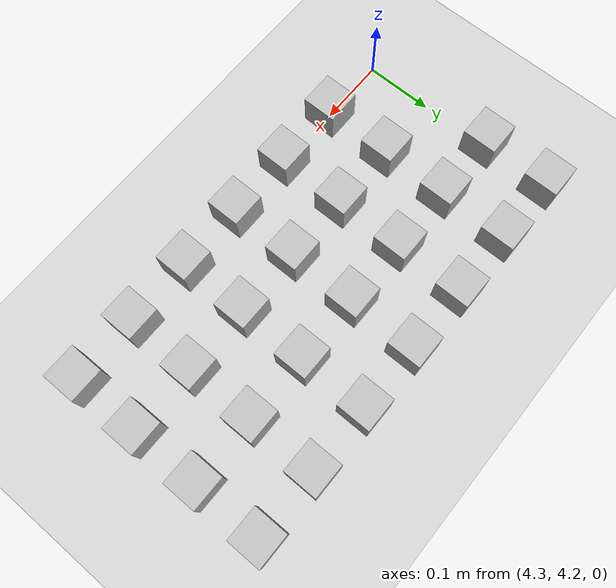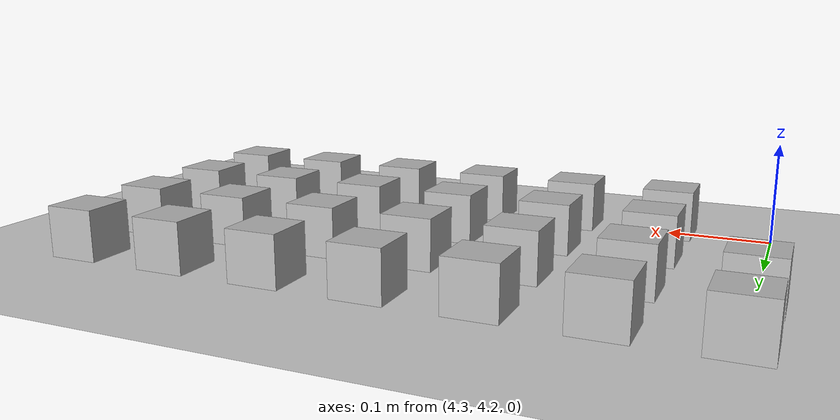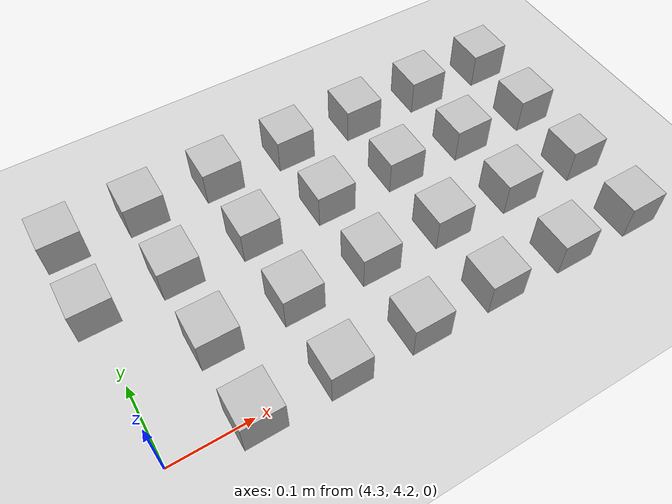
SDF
<sdf version="1.6">
 <world name="default">
  <model name="ground_plane">
   <static>1</static>
   <link name="link">
    <collision name="collision">
     <geometry><plane><normal>0 0 1</normal><size>100 100</size></plane></geometry>
     <surface><friction><ode><mu>100</mu><mu2>50</mu2></ode></friction></surface>
    </collision>
    <visual name="visual">
     <cast_shadows>0</cast_shadows>
     <geometry><plane><normal>0 0 1</normal><size>100 100</size></plane></geometry>
     <material>
      <script><uri>file://media/materials/scripts/gazebo.material</uri><name>Gazebo/Grey</name></script>
     </material>
    </visual>
   </link>
  </model>
  <model name="at194">
   <static>0</static>
   <link name="link">
    <inertial>
     <mass>0.01</mass>
     <inertia><ixx>4e-05</ixx><ixy>0</ixy><ixz>0</ixz><iyy>4e-05</iyy><iyz>0</iyz><izz>4e-05</izz></inertia>
    </inertial>
    <visual name="visual">
     <geometry><box><size>0.05 0.05 0.05</size></box></geometry>
     <material>
      <script>
       <uri>model://at0/materials/scripts</uri>
       <uri>model://at0/materials/textures</uri>
       <name>at0/Diffuse</name>
      </script>
     </material>
    </visual>
    <collision name="collision">
     <geometry><box><size>0.05 0.05 0.05</size></box></geometry>
     <surface><friction><ode><mu>0.8</mu><mu2>0.7</mu2></ode></friction></surface>
    </collision>
   </link>
   <pose>4.4 4.2 0.025 0 -0 0</pose>
  </model>
  <model name="at195">
   <static>0</static>
   <link name="link">
    <inertial>
     <mass>0.01</mass>
     <inertia><ixx>4e-05</ixx><ixy>0</ixy><ixz>0</ixz><iyy>4e-05</iyy><iyz>0</iyz><izz>4e-05</izz></inertia>
    </inertial>
    <visual name="visual">
     <geometry><box><size>0.05 0.05 0.05</size></box></geometry>
     <material>
      <script>
       <uri>model://at0/materials/scripts</uri>
       <uri>model://at0/materials/textures</uri>
       <name>at0/Diffuse</name>
      </script>
     </material>
    </visual>
    <collision name="collision">
     <geometry><box><size>0.05 0.05 0.05</size></box></geometry>
     <surface><friction><ode><mu>0.8</mu><mu2>0.7</mu2></ode></friction></surface>
    </collision>
   </link>
   <pose>4.5 4.2 0.025 0 -0 0</pose>
  </model>
  <model name="at196">
   <static>0</static>
   <link name="link">
    <inertial>
     <mass>0.01</mass>
     <inertia><ixx>4e-05</ixx><ixy>0</ixy><ixz>0</ixz><iyy>4e-05</iyy><iyz>0</iyz><izz>4e-05</izz></inertia>
    </inertial>
    <visual name="visual">
     <geometry><box><size>0.05 0.05 0.05</size></box></geometry>
     <material>
      <script>
       <uri>model://at0/materials/scripts</uri>
       <uri>model://at0/materials/textures</uri>
       <name>at0/Diffuse</name>
      </script>
     </material>
    </visual>
    <collision name="collision">
     <geometry><box><size>0.05 0.05 0.05</size></box></geometry>
     <surface><friction><ode><mu>0.8</mu><mu2>0.7</mu2></ode></friction></surface>
    </collision>
   </link>
   <pose>4.6 4.2 0.025 0 -0 0</pose>
  </model>
  <model name="at197">
   <static>0</static>
   <link name="link">
    <inertial>
     <mass>0.01</mass>
     <inertia><ixx>4e-05</ixx><ixy>0</ixy><ixz>0</ixz><iyy>4e-05</iyy><iyz>0</iyz><izz>4e-05</izz></inertia>
    </inertial>
    <visual name="visual">
     <geometry><box><size>0.05 0.05 0.05</size></box></geometry>
     <material>
      <script>
       <uri>model://at0/materials/scripts</uri>
       <uri>model://at0/materials/textures</uri>
       <name>at0/Diffuse</name>
      </script>
     </material>
    </visual>
    <collision name="collision">
     <geometry><box><size>0.05 0.05 0.05</size></box></geometry>
     <surface><friction><ode><mu>0.8</mu><mu2>0.7</mu2></ode></friction></surface>
    </collision>
   </link>
   <pose>4.7 4.2 0.025 0 -0 0</pose>
  </model>
  <model name="at198">
   <static>0</static>
   <link name="link">
    <inertial>
     <mass>0.01</mass>
     <inertia><ixx>4e-05</ixx><ixy>0</ixy><ixz>0</ixz><iyy>4e-05</iyy><iyz>0</iyz><izz>4e-05</izz></inertia>
    </inertial>
    <visual name="visual">
     <geometry><box><size>0.05 0.05 0.05</size></box></geometry>
     <material>
      <script>
       <uri>model://at0/materials/scripts</uri>
       <uri>model://at0/materials/textures</uri>
       <name>at0/Diffuse</name>
      </script>
     </material>
    </visual>
    <collision name="collision">
     <geometry><box><size>0.05 0.05 0.05</size></box></geometry>
     <surface><friction><ode><mu>0.8</mu><mu2>0.7</mu2></ode></friction></surface>
    </collision>
   </link>
   <pose>4.8 4.2 0.025 0 -0 0</pose>
  </model>
  <model name="at199">
   <static>0</static>
   <link name="link">
    <inertial>
     <mass>0.01</mass>
     <inertia><ixx>4e-05</ixx><ixy>0</ixy><ixz>0</ixz><iyy>4e-05</iyy><iyz>0</iyz><izz>4e-05</izz></inertia>
    </inertial>
    <visual name="visual">
     <geometry><box><size>0.05 0.05 0.05</size></box></geometry>
     <material>
      <script>
       <uri>model://at0/materials/scripts</uri>
       <uri>model://at0/materials/textures</uri>
       <name>at0/Diffuse</name>
      </script>
     </material>
    </visual>
    <collision name="collision">
     <geometry><box><size>0.05 0.05 0.05</size></box></geometry>
     <surface><friction><ode><mu>0.8</mu><mu2>0.7</mu2></ode></friction></surface>
    </collision>
   </link>
   <pose>4.9 4.2 0.025 0 -0 0</pose>
  </model>
  <model name="at202">
   <static>0</static>
   <link name="link">
    <inertial>
     <mass>0.01</mass>
     <inertia><ixx>4e-05</ixx><ixy>0</ixy><ixz>0</ixz><iyy>4e-05</iyy><iyz>0</iyz><izz>4e-05</izz></inertia>
    </inertial>
    <visual name="visual">
     <geometry><box><size>0.05 0.05 0.05</size></box></geometry>
     <material>
      <script>
       <uri>model://at0/materials/scripts</uri>
       <uri>model://at0/materials/textures</uri>
       <name>at0/Diffuse</name>
      </script>
     </material>
    </visual>
    <collision name="collision">
     <geometry><box><size>0.05 0.05 0.05</size></box></geometry>
     <surface><friction><ode><mu>0.8</mu><mu2>0.7</mu2></ode></friction></surface>
    </collision>
   </link>
   <pose>4.4 4.3 0.025 0 -0 0</pose>
  </model>
  <model name="at203">
   <static>0</static>
   <link name="link">
    <inertial>
     <mass>0.01</mass>
     <inertia><ixx>4e-05</ixx><ixy>0</ixy><ixz>0</ixz><iyy>4e-05</iyy><iyz>0</iyz><izz>4e-05</izz></inertia>
    </inertial>
    <visual name="visual">
     <geometry><box><size>0.05 0.05 0.05</size></box></geometry>
     <material>
      <script>
       <uri>model://at0/materials/scripts</uri>
       <uri>model://at0/materials/textures</uri>
       <name>at0/Diffuse</name>
      </script>
     </material>
    </visual>
    <collision name="collision">
     <geometry><box><size>0.05 0.05 0.05</size></box></geometry>
     <surface><friction><ode><mu>0.8</mu><mu2>0.7</mu2></ode></friction></surface>
    </collision>
   </link>
   <pose>4.5 4.3 0.025 0 -0 0</pose>
  </model>
  <model name="at204">
   <static>0</static>
   <link name="link">
    <inertial>
     <mass>0.01</mass>
     <inertia><ixx>4e-05</ixx><ixy>0</ixy><ixz>0</ixz><iyy>4e-05</iyy><iyz>0</iyz><izz>4e-05</izz></inertia>
    </inertial>
    <visual name="visual">
     <geometry><box><size>0.05 0.05 0.05</size></box></geometry>
     <material>
      <script>
       <uri>model://at0/materials/scripts</uri>
       <uri>model://at0/materials/textures</uri>
       <name>at0/Diffuse</name>
      </script>
     </material>
    </visual>
    <collision name="collision">
     <geometry><box><size>0.05 0.05 0.05</size></box></geometry>
     <surface><friction><ode><mu>0.8</mu><mu2>0.7</mu2></ode></friction></surface>
    </collision>
   </link>
   <pose>4.6 4.3 0.025 0 -0 0</pose>
  </model>
  <model name="at205">
   <static>0</static>
   <link name="link">
    <inertial>
     <mass>0.01</mass>
     <inertia><ixx>4e-05</ixx><ixy>0</ixy><ixz>0</ixz><iyy>4e-05</iyy><iyz>0</iyz><izz>4e-05</izz></inertia>
    </inertial>
    <visual name="visual">
     <geometry><box><size>0.05 0.05 0.05</size></box></geometry>
     <material>
      <script>
       <uri>model://at0/materials/scripts</uri>
       <uri>model://at0/materials/textures</uri>
       <name>at0/Diffuse</name>
      </script>
     </material>
    </visual>
    <collision name="collision">
     <geometry><box><size>0.05 0.05 0.05</size></box></geometry>
     <surface><friction><ode><mu>0.8</mu><mu2>0.7</mu2></ode></friction></surface>
    </collision>
   </link>
   <pose>4.7 4.3 0.025 0 -0 0</pose>
  </model>
  <model name="at206">
   <static>0</static>
   <link name="link">
    <inertial>
     <mass>0.01</mass>
     <inertia><ixx>4e-05</ixx><ixy>0</ixy><ixz>0</ixz><iyy>4e-05</iyy><iyz>0</iyz><izz>4e-05</izz></inertia>
    </inertial>
    <visual name="visual">
     <geometry><box><size>0.05 0.05 0.05</size></box></geometry>
     <material>
      <script>
       <uri>model://at0/materials/scripts</uri>
       <uri>model://at0/materials/textures</uri>
       <name>at0/Diffuse</name>
      </script>
     </material>
    </visual>
    <collision name="collision">
     <geometry><box><size>0.05 0.05 0.05</size></box></geometry>
     <surface><friction><ode><mu>0.8</mu><mu2>0.7</mu2></ode></friction></surface>
    </collision>
   </link>
   <pose>4.8 4.3 0.025 0 -0 0</pose>
  </model>
  <model name="at207">
   <static>0</static>
   <link name="link">
    <inertial>
     <mass>0.01</mass>
     <inertia><ixx>4e-05</ixx><ixy>0</ixy><ixz>0</ixz><iyy>4e-05</iyy><iyz>0</iyz><izz>4e-05</izz></inertia>
    </inertial>
    <visual name="visual">
     <geometry><box><size>0.05 0.05 0.05</size></box></geometry>
     <material>
      <script>
       <uri>model://at0/materials/scripts</uri>
       <uri>model://at0/materials/textures</uri>
       <name>at0/Diffuse</name>
      </script>
     </material>
    </visual>
    <collision name="collision">
     <geometry><box><size>0.05 0.05 0.05</size></box></geometry>
     <surface><friction><ode><mu>0.8</mu><mu2>0.7</mu2></ode></friction></surface>
    </collision>
   </link>
   <pose>4.9 4.3 0.025 0 -0 0</pose>
  </model>
  <model name="at209">
   <static>0</static>
   <link name="link">
    <inertial>
     <mass>0.01</mass>
     <inertia><ixx>4e-05</ixx><ixy>0</ixy><ixz>0</ixz><iyy>4e-05</iyy><iyz>0</iyz><izz>4e-05</izz></inertia>
    </inertial>
    <visual name="visual">
     <geometry><box><size>0.05 0.05 0.05</size></box></geometry>
     <material>
      <script>
       <uri>model://at0/materials/scripts</uri>
       <uri>model://at0/materials/textures</uri>
       <name>at0/Diffuse</name>
      </script>
     </material>
    </visual>
    <collision name="collision">
     <geometry><box><size>0.05 0.05 0.05</size></box></geometry>
     <surface><friction><ode><mu>0.8</mu><mu2>0.7</mu2></ode></friction></surface>
    </collision>
   </link>
   <pose>4.3 4.4 0.025 0 -0 0</pose>
  </model>
  <model name="at210">
   <static>0</static>
   <link name="link">
    <inertial>
     <mass>0.01</mass>
     <inertia><ixx>4e-05</ixx><ixy>0</ixy><ixz>0</ixz><iyy>4e-05</iyy><iyz>0</iyz><izz>4e-05</izz></inertia>
    </inertial>
    <visual name="visual">
     <geometry><box><size>0.05 0.05 0.05</size></box></geometry>
     <material>
      <script>
       <uri>model://at0/materials/scripts</uri>
       <uri>model://at0/materials/textures</uri>
       <name>at0/Diffuse</name>
      </script>
     </material>
    </visual>
    <collision name="collision">
     <geometry><box><size>0.05 0.05 0.05</size></box></geometry>
     <surface><friction><ode><mu>0.8</mu><mu2>0.7</mu2></ode></friction></surface>
    </collision>
   </link>
   <pose>4.4 4.4 0.025 0 -0 0</pose>
  </model>
  <model name="at211">
   <static>0</static>
   <link name="link">
    <inertial>
     <mass>0.01</mass>
     <inertia><ixx>4e-05</ixx><ixy>0</ixy><ixz>0</ixz><iyy>4e-05</iyy><iyz>0</iyz><izz>4e-05</izz></inertia>
    </inertial>
    <visual name="visual">
     <geometry><box><size>0.05 0.05 0.05</size></box></geometry>
     <material>
      <script>
       <uri>model://at0/materials/scripts</uri>
       <uri>model://at0/materials/textures</uri>
       <name>at0/Diffuse</name>
      </script>
     </material>
    </visual>
    <collision name="collision">
     <geometry><box><size>0.05 0.05 0.05</size></box></geometry>
     <surface><friction><ode><mu>0.8</mu><mu2>0.7</mu2></ode></friction></surface>
    </collision>
   </link>
   <pose>4.5 4.4 0.025 0 -0 0</pose>
  </model>
  <model name="at212">
   <static>0</static>
   <link name="link">
    <inertial>
     <mass>0.01</mass>
     <inertia><ixx>4e-05</ixx><ixy>0</ixy><ixz>0</ixz><iyy>4e-05</iyy><iyz>0</iyz><izz>4e-05</izz></inertia>
    </inertial>
    <visual name="visual">
     <geometry><box><size>0.05 0.05 0.05</size></box></geometry>
     <material>
      <script>
       <uri>model://at0/materials/scripts</uri>
       <uri>model://at0/materials/textures</uri>
       <name>at0/Diffuse</name>
      </script>
     </material>
    </visual>
    <collision name="collision">
     <geometry><box><size>0.05 0.05 0.05</size></box></geometry>
     <surface><friction><ode><mu>0.8</mu><mu2>0.7</mu2></ode></friction></surface>
    </collision>
   </link>
   <pose>4.6 4.4 0.025 0 -0 0</pose>
  </model>
  <model name="at213">
   <static>0</static>
   <link name="link">
    <inertial>
     <mass>0.01</mass>
     <inertia><ixx>4e-05</ixx><ixy>0</ixy><ixz>0</ixz><iyy>4e-05</iyy><iyz>0</iyz><izz>4e-05</izz></inertia>
    </inertial>
    <visual name="visual">
     <geometry><box><size>0.05 0.05 0.05</size></box></geometry>
     <material>
      <script>
       <uri>model://at0/materials/scripts</uri>
       <uri>model://at0/materials/textures</uri>
       <name>at0/Diffuse</name>
      </script>
     </material>
    </visual>
    <collision name="collision">
     <geometry><box><size>0.05 0.05 0.05</size></box></geometry>
     <surface><friction><ode><mu>0.8</mu><mu2>0.7</mu2></ode></friction></surface>
    </collision>
   </link>
   <pose>4.7 4.4 0.025 0 -0 0</pose>
  </model>
  <model name="at214">
   <static>0</static>
   <link name="link">
    <inertial>
     <mass>0.01</mass>
     <inertia><ixx>4e-05</ixx><ixy>0</ixy><ixz>0</ixz><iyy>4e-05</iyy><iyz>0</iyz><izz>4e-05</izz></inertia>
    </inertial>
    <visual name="visual">
     <geometry><box><size>0.05 0.05 0.05</size></box></geometry>
     <material>
      <script>
       <uri>model://at0/materials/scripts</uri>
       <uri>model://at0/materials/textures</uri>
       <name>at0/Diffuse</name>
      </script>
     </material>
    </visual>
    <collision name="collision">
     <geometry><box><size>0.05 0.05 0.05</size></box></geometry>
     <surface><friction><ode><mu>0.8</mu><mu2>0.7</mu2></ode></friction></surface>
    </collision>
   </link>
   <pose>4.8 4.4 0.025 0 -0 0</pose>
  </model>
  <model name="at215">
   <static>0</static>
   <link name="link">
    <inertial>
     <mass>0.01</mass>
     <inertia><ixx>4e-05</ixx><ixy>0</ixy><ixz>0</ixz><iyy>4e-05</iyy><iyz>0</iyz><izz>4e-05</izz></inertia>
    </inertial>
    <visual name="visual">
     <geometry><box><size>0.05 0.05 0.05</size></box></geometry>
     <material>
      <script>
       <uri>model://at0/materials/scripts</uri>
       <uri>model://at0/materials/textures</uri>
       <name>at0/Diffuse</name>
      </script>
     </material>
    </visual>
    <collision name="collision">
     <geometry><box><size>0.05 0.05 0.05</size></box></geometry>
     <surface><friction><ode><mu>0.8</mu><mu2>0.7</mu2></ode></friction></surface>
    </collision>
   </link>
   <pose>4.9 4.4 0.025 0 -0 0</pose>
  </model>
  <model name="at217">
   <static>0</static>
   <link name="link">
    <inertial>
     <mass>0.01</mass>
     <inertia><ixx>4e-05</ixx><ixy>0</ixy><ixz>0</ixz><iyy>4e-05</iyy><iyz>0</iyz><izz>4e-05</izz></inertia>
    </inertial>
    <visual name="visual">
     <geometry><box><size>0.05 0.05 0.05</size></box></geometry>
     <material>
      <script>
       <uri>model://at0/materials/scripts</uri>
       <uri>model://at0/materials/textures</uri>
       <name>at0/Diffuse</name>
      </script>
     </material>
    </visual>
    <collision name="collision">
     <geometry><box><size>0.05 0.05 0.05</size></box></geometry>
     <surface><friction><ode><mu>0.8</mu><mu2>0.7</mu2></ode></friction></surface>
    </collision>
   </link>
   <pose>4.3 4.5 0.025 0 -0 0</pose>
  </model>
  <model name="at218">
   <static>0</static>
   <link name="link">
    <inertial>
     <mass>0.01</mass>
     <inertia><ixx>4e-05</ixx><ixy>0</ixy><ixz>0</ixz><iyy>4e-05</iyy><iyz>0</iyz><izz>4e-05</izz></inertia>
    </inertial>
    <visual name="visual">
     <geometry><box><size>0.05 0.05 0.05</size></box></geometry>
     <material>
      <script>
       <uri>model://at0/materials/scripts</uri>
       <uri>model://at0/materials/textures</uri>
       <name>at0/Diffuse</name>
      </script>
     </material>
    </visual>
    <collision name="collision">
     <geometry><box><size>0.05 0.05 0.05</size></box></geometry>
     <surface><friction><ode><mu>0.8</mu><mu2>0.7</mu2></ode></friction></surface>
    </collision>
   </link>
   <pose>4.4 4.5 0.025 0 -0 0</pose>
  </model>
  <model name="at219">
   <static>0</static>
   <link name="link">
    <inertial>
     <mass>0.01</mass>
     <inertia><ixx>4e-05</ixx><ixy>0</ixy><ixz>0</ixz><iyy>4e-05</iyy><iyz>0</iyz><izz>4e-05</izz></inertia>
    </inertial>
    <visual name="visual">
     <geometry><box><size>0.05 0.05 0.05</size></box></geometry>
     <material>
      <script>
       <uri>model://at0/materials/scripts</uri>
       <uri>model://at0/materials/textures</uri>
       <name>at0/Diffuse</name>
      </script>
     </material>
    </visual>
    <collision name="collision">
     <geometry><box><size>0.05 0.05 0.05</size></box></geometry>
     <surface><friction><ode><mu>0.8</mu><mu2>0.7</mu2></ode></friction></surface>
    </collision>
   </link>
   <pose>4.5 4.5 0.025 0 -0 0</pose>
  </model>
  <model name="at220">
   <static>0</static>
   <link name="link">
    <inertial>
     <mass>0.01</mass>
     <inertia><ixx>4e-05</ixx><ixy>0</ixy><ixz>0</ixz><iyy>4e-05</iyy><iyz>0</iyz><izz>4e-05</izz></inertia>
    </inertial>
    <visual name="visual">
     <geometry><box><size>0.05 0.05 0.05</size></box></geometry>
     <material>
      <script>
       <uri>model://at0/materials/scripts</uri>
       <uri>model://at0/materials/textures</uri>
       <name>at0/Diffuse</name>
      </script>
     </material>
    </visual>
    <collision name="collision">
     <geometry><box><size>0.05 0.05 0.05</size></box></geometry>
     <surface><friction><ode><mu>0.8</mu><mu2>0.7</mu2></ode></friction></surface>
    </collision>
   </link>
   <pose>4.6 4.5 0.025 0 -0 0</pose>
  </model>
  <model name="at221">
   <static>0</static>
   <link name="link">
    <inertial>
     <mass>0.01</mass>
     <inertia><ixx>4e-05</ixx><ixy>0</ixy><ixz>0</ixz><iyy>4e-05</iyy><iyz>0</iyz><izz>4e-05</izz></inertia>
    </inertial>
    <visual name="visual">
     <geometry><box><size>0.05 0.05 0.05</size></box></geometry>
     <material>
      <script>
       <uri>model://at0/materials/scripts</uri>
       <uri>model://at0/materials/textures</uri>
       <name>at0/Diffuse</name>
      </script>
     </material>
    </visual>
    <collision name="collision">
     <geometry><box><size>0.05 0.05 0.05</size></box></geometry>
     <surface><friction><ode><mu>0.8</mu><mu2>0.7</mu2></ode></friction></surface>
    </collision>
   </link>
   <pose>4.7 4.5 0.025 0 -0 0</pose>
  </model>
  <model name="at222">
   <static>0</static>
   <link name="link">
    <inertial>
     <mass>0.01</mass>
     <inertia><ixx>4e-05</ixx><ixy>0</ixy><ixz>0</ixz><iyy>4e-05</iyy><iyz>0</iyz><izz>4e-05</izz></inertia>
    </inertial>
    <visual name="visual">
     <geometry><box><size>0.05 0.05 0.05</size></box></geometry>
     <material>
      <script>
       <uri>model://at0/materials/scripts</uri>
       <uri>model://at0/materials/textures</uri>
       <name>at0/Diffuse</name>
      </script>
     </material>
    </visual>
    <collision name="collision">
     <geometry><box><size>0.05 0.05 0.05</size></box></geometry>
     <surface><friction><ode><mu>0.8</mu><mu2>0.7</mu2></ode></friction></surface>
    </collision>
   </link>
   <pose>4.8 4.5 0.025 0 -0 0</pose>
  </model>
  <model name="at223">
   <static>0</static>
   <link name="link">
    <inertial>
     <mass>0.01</mass>
     <inertia><ixx>4e-05</ixx><ixy>0</ixy><ixz>0</ixz><iyy>4e-05</iyy><iyz>0</iyz><izz>4e-05</izz></inertia>
    </inertial>
    <visual name="visual">
     <geometry><box><size>0.05 0.05 0.05</size></box></geometry>
     <material>
      <script>
       <uri>model://at0/materials/scripts</uri>
       <uri>model://at0/materials/textures</uri>
       <name>at0/Diffuse</name>
      </script>
     </material>
    </visual>
    <collision name="collision">
     <geometry><box><size>0.05 0.05 0.05</size></box></geometry>
     <surface><friction><ode><mu>0.8</mu><mu2>0.7</mu2></ode></friction></surface>
    </collision>
   </link>
   <pose>4.9 4.5 0.025 0 -0 0</pose>
  </model>
 </world>
</sdf>
